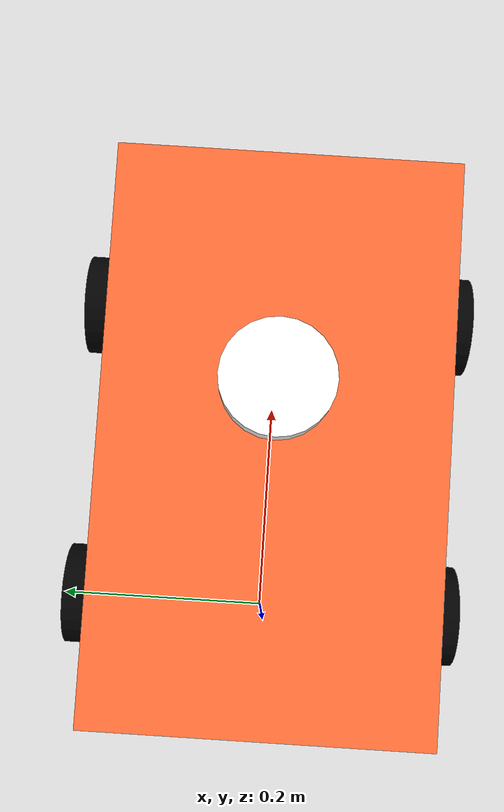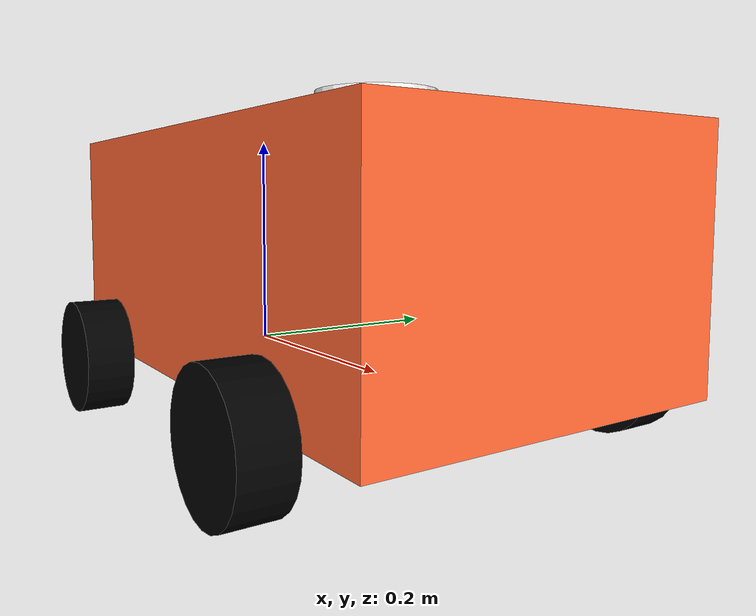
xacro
<?xml version="1.0"?>
<robot xmlns:xacro="http://www.ros.org/wiki/xacro"  name="robot">

    <xacro:include filename="robot_base.xacro" />

    <xacro:include filename="lidar.xacro" />

    <!-- To use camera, comment out depth camera and use the camera xacro tag. -->
    <xacro:include filename="camera.xacro" />

    <!-- Commenting Gazebo Control so that ros2_control can be the default control framework for the robot -->

    <xacro:include filename="ros2_control.xacro" />

</robot>

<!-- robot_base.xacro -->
<robot xmlns:xacro="http://www.ros.org/wiki/xacro" >

    <xacro:include filename="inertial_macros.xacro" />

    <material name="white">
        <color rgba="1 1 1 1"/>
    </material>

    <material name="blue">
        <color rgba="1 0.3 0.1 1"/>
    </material>

    <material name="blurrywood">
        <color rgba="1 0.4 0.2 1"/>
    </material>

    <material name="black">
        <color rgba="0 0 0 1"/>
    </material>

    <material name="orange">
        <color rgba="1 0.3 0.1 1"/>
    </material>

    <!--BASE LINK-->

    <link name="base_link">

    </link>

    <!-- BASE FOOTPRINT -->

    <joint name="base_footprint_joint" type="fixed">
        <parent link="base_link"/>
        <child link="base_footprint"/>
        <origin xyz="0 0 0" rpy="0 0 0"/>
    </joint>

    <link name="base_footprint">
    </link>

    <!--CHASSIS LINK-->

    <joint name="chassis_joint" type="fixed">
        <parent link="base_link"/>
        <child link="chassis"/>
        <origin xyz="-0.1 0 0"/>
    </joint>

    <link name="chassis">
        <visual>
            <origin xyz="0.25 0 0.1" />
            <geometry>
                <box size="0.5 0.3 0.2" />
            </geometry>oo
            <material name="blurrywood" />
        </visual>
        <collision>
            <origin xyz="0.25 0 0.1" />
            <geometry>
                <box size="0.5 0.3 0.2" />
            </geometry>
        </collision>
        <xacro:inertial_box mass="0.5" x="0.5" y="0.3" z="0.2">
            <origin xyz="0.25 0 0.1" rpy="0 0 0"/>
        </xacro:inertial_box>
    </link>

    <gazebo reference="chassis">
        <material>
            Gazebo/Orange
        </material>
    </gazebo>

    <!-- LEFT WHEEL LINK-->

    <joint name="left_wheel_joint" type="continuous">
        <parent link="base_link" />
        <child link="left_wheel" />
        <origin xyz="0 0.175 0" rpy="-${pi/2} 0 0" />
        <axis xyz="0 0 1"/>
    </joint>

    <link name="left_wheel">
        <visual>
            <geometry>
                <cylinder radius="0.05" length="0.04" />
            </geometry>
            <material name="black" />
        </visual>
        <collision>
            <geometry>
                <sphere radius="0.05" />
            </geometry>
        </collision>
        <xacro:inertial_cylinder mass="0.1" length="0.04" radius="0.05">
            <origin xyz="0 0 0" rpy="0 0 0"/>
        </xacro:inertial_cylinder>
    </link>

    <gazebo reference="left_wheel">
        <material>
            Gazebo/Black
        </material>
    </gazebo>

    <!-- RIGHT WHEEL LINK-->

    <joint name="right_wheel_joint" type="continuous">
        <parent link="base_link" />
        <child link="right_wheel" />
        <origin xyz="0 -0.175 0" rpy="${pi/2} 0 0" />
        <axis xyz="0 0 -1"/>
    </joint>

    <link name="right_wheel">
        <visual>
            <geometry>
                <cylinder radius="0.05" length="0.04" />
            </geometry>
            <material name="black" />
        </visual>
        <collision>
            <geometry>
                <sphere radius="0.05" />
            </geometry>
        </collision>
        <xacro:inertial_cylinder mass="0.1" length="0.04" radius="0.05">
            <origin xyz="0 0 0" rpy="0 0 0"/>
        </xacro:inertial_cylinder>
    </link>

    <gazebo reference="right_wheel">
        <material>
            Gazebo/Black
        </material>
    </gazebo>

    <!-- LEFT CASTER WHEELS LINK-->

    <joint name="left_caster_wheel_joint" type="fixed">
        <parent link="chassis" />
        <child link="left_caster_wheel" />
        <origin xyz="0.4 0.175 0" rpy="-${pi/2} 0 0"/>
        <axis xyz="0 0 1"/>
    </joint>

    <link name="left_caster_wheel">
        <visual>
            <geometry>
                <cylinder radius="0.05" length="0.04"/>
            </geometry>
            <material name="black" />
        </visual>
        <collision>
            <geometry>
                <cylinder radius="0.05" length="0.04"/>
            </geometry>
        </collision>
        <xacro:inertial_cylinder mass="0.1" length="0.04" radius="0.05">
            <origin xyz="0 0 0" rpy="0 0 0"/>
        </xacro:inertial_cylinder>
    </link>

    <gazebo reference="left_caster_wheel">
        <material>
            Gazebo/Black
        </material>
        <mu1 value="0.01" />
        <mu2 value="0.01" />
    </gazebo>

        <!-- RIGHT CASTER WHEELS LINK-->

        <joint name="right_caster_wheel_joint" type="fixed">
            <parent link="chassis" />
            <child link="right_caster_wheel" />
            <origin xyz="0.4 -0.175 0" rpy="${pi/2} 0 0"/>
            <axis xyz="0 0 -1"/>
        </joint>

        <link name="right_caster_wheel">
            <visual>
                <geometry>
                    <cylinder radius="0.05" length="0.04"/>
                </geometry>
                <material name="black" />
            </visual>
            <collision>
                <geometry>
                    <cylinder radius="0.05" length="0.04"/>
                </geometry>
            </collision>
            <xacro:inertial_cylinder mass="0.1" length="0.04" radius="0.05">
                <origin xyz="0 0 0" rpy="0 0 0"/>
            </xacro:inertial_cylinder>
        </link>

        <gazebo reference="right_caster_wheel">
            <material>
                Gazebo/Black
            </material>
            <mu1 value="0.01" />
            <mu2 value="0.01" />
        </gazebo>

</robot>

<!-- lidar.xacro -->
<robot xmlns:xacro="http://www.ros.org/wiki/xacro">

    <joint name="laser_joint" type="fixed">
        <parent link="chassis"/>
        <child link="laser_frame"/>
        <origin xyz="0.3 0 0.21" rpy="0 0 0"/>
    </joint>

    <link name="laser_frame">
        <visual>
            <geometry>
                <cylinder radius="0.05" length="0.04" />
            </geometry>
            <material name="white" />
        </visual>
        <collision>
            <geometry>
                <cylinder radius="0.05" length="0.04" />
            </geometry>
        </collision>
        <xacro:inertial_cylinder mass="0.1" length="0.04" radius="0.05">
            <origin xyz="0 0 0" rpy="0 0 0"/>
        </xacro:inertial_cylinder>
    </link>

    <gazebo reference="laser_frame">
        <material>Gazebo/White</material>
        <sensor name="laser" type="ray">
            <pose> 0 0 0 0 0 0 </pose>
            <visualize>false</visualize>
            <update_rate>10</update_rate>
            <ray>
                <scan>
                    <horizontal>
                        <samples>360</samples>
                        <min_angle>-3.14</min_angle>
                        <max_angle>3.14</max_angle>
                    </horizontal>
                </scan>
                <range>
                    <min>0.3</min>
                    <max>12</max>
                </range>
            </ray>
            <plugin name="laser_controller" filename="libgazebo_ros_ray_sensor.so">
                <ros>
                    <argument>~/out:=scan</argument>
                </ros>
                <output_type>sensor_msgs/LaserScan</output_type>
                <frame_name>laser_frame</frame_name>
            </plugin>
        </sensor>
    </gazebo>

</robot>

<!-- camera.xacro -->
<robot xmlns:xacro="http://www.ros.org/wiki/xacro">

    <joint name="camera_joint" type="fixed">
        <parent link="chassis"/>
        <child link="camera_link"/>
        <origin xyz="0.305 0 0.08" rpy="0 0.18 0"/>
    </joint>

    <link name="camera_link">
        <visual>
            <geometry>
                <box size="0.010 0.03 0.03" />
            </geometry>
            <material name="white" />
        </visual>
    </link>

    <joint name="camera_optical_joint" type="fixed">
        <parent link="camera_link"/>
        <child link="camera_optical_link"/>
        <origin xyz="0 0 0" rpy="${-pi/2} 0 ${-pi/2}"/>
    </joint>

    <link name="camera_optical_link"></link>

    <gazebo reference="camera_link">
        <material>Gazebo/White</material>
        <sensor name="camera" type="camera">
            <pose> 0 0 0 0 0 0 </pose>
            <visualize>true</visualize>
            <update_rate>10</update_rate>
            <camera>
                <horizontal_fov>1.089</horizontal_fov>
                <image>
                    <format>R8G8B8</format>
                    <width>640</width>
                    <height>480</height>
                </image>
                <clip>
                    <near>0.05</near>
                    <far>8.0</far>
                </clip>
            </camera>
            <plugin name="camera_controller" filename="libgazebo_ros_camera.so">
                <frame_name>camera_optical_link</frame_name>
            </plugin>
        </sensor>
    </gazebo>

</robot>
